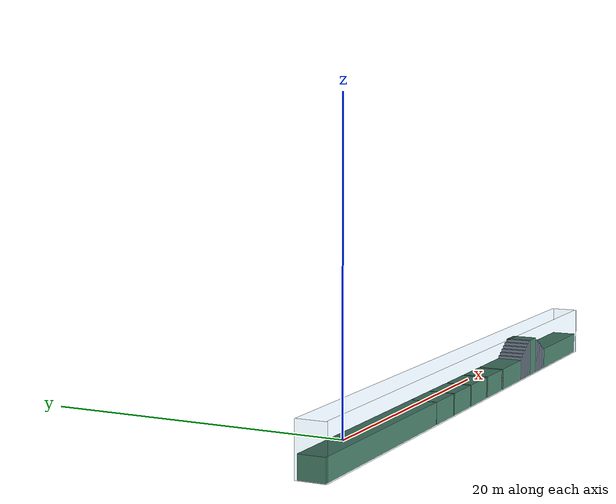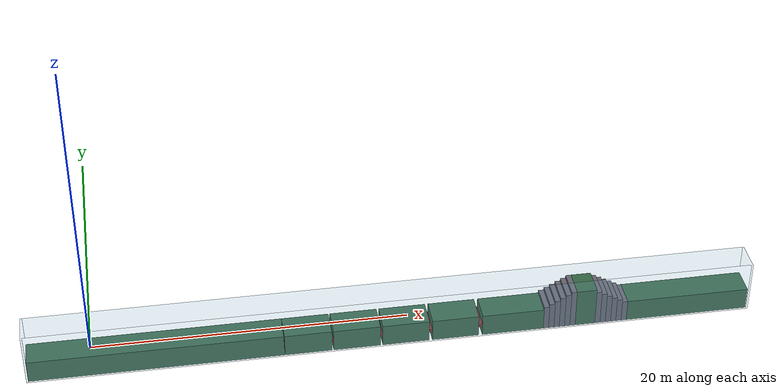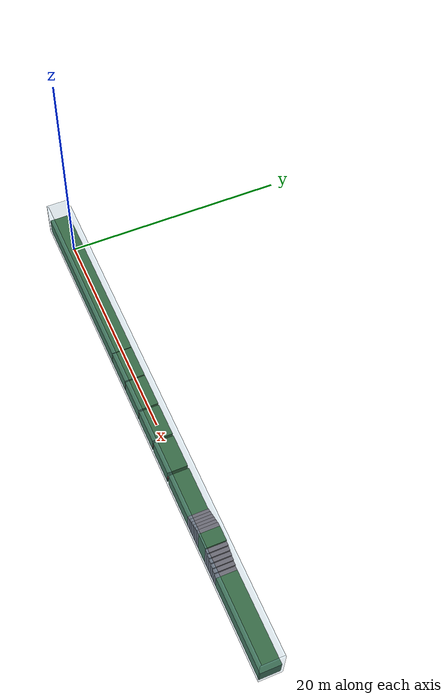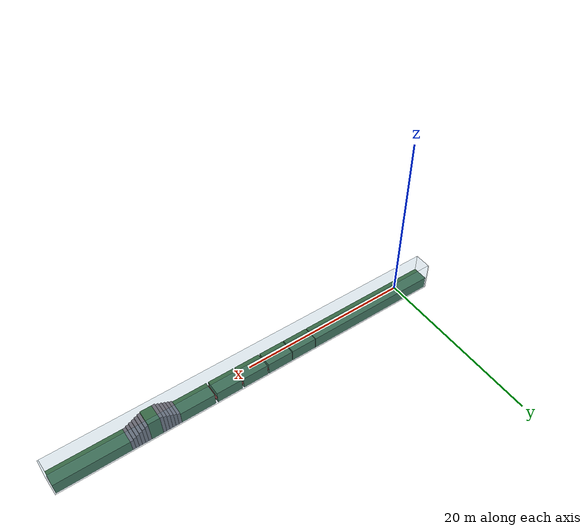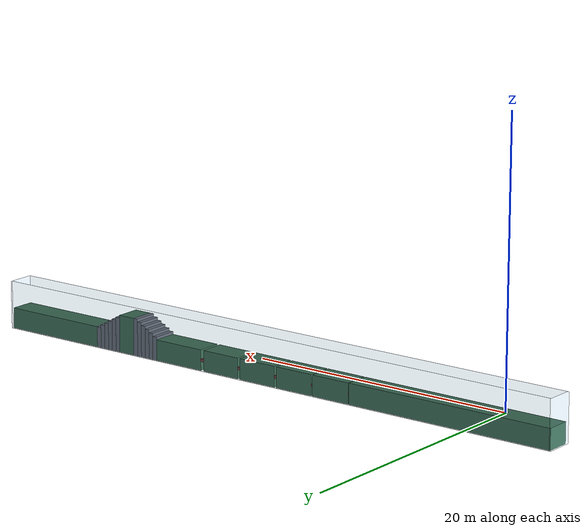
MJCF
<?xml version="1.0" encoding="utf-8"?>
<mujoco model="vrl progression terrain">
  <!-- +X course: 12m ahead of spawn, 5/10/15/20/25cm gaps separated by 3m flats,
       then a 4m approach to unchanged 10cm stairs. Gap depth is 1.5m. -->
  <statistic center="19.125 0 0.4" extent="26"/>
  <visual>
    <headlight diffuse="0.7 0.7 0.7" ambient="0.25 0.25 0.25"/>
    <global azimuth="-125" elevation="-22"/>
  </visual>
  <default>
    <default class="course">
      <geom type="box" friction="0.8 0.8 0.8" priority="2" contype="1" conaffinity="1"/>
    </default>
    <default class="guard">
      <geom type="box" friction="0.3 0.005 0.0001" contype="1" conaffinity="1" rgba="0.55 0.8 0.95 0.18"/>
    </default>
  </default>
  <worldbody>
    <light pos="15 0 8" dir="0 0 -1" directional="true"/>
    <geom name="start_flat" class="course" pos="4.000 0 -0.750" size="8.000 0.90 0.750" rgba="0.22 0.42 0.28 1"/>
    <geom name="gap_05_bottom" class="course" pos="12.025 0 -0.750" size="0.025 0.90 0.100" rgba="0.55 0.18 0.16 1"/>
    <geom name="flat_after_gap_05" class="course" pos="13.550 0 -0.750" size="1.500 0.90 0.750" rgba="0.22 0.42 0.28 1"/>
    <geom name="gap_10_bottom" class="course" pos="15.100 0 -0.750" size="0.050 0.90 0.100" rgba="0.55 0.18 0.16 1"/>
    <geom name="flat_after_gap_10" class="course" pos="16.650 0 -0.750" size="1.500 0.90 0.750" rgba="0.22 0.42 0.28 1"/>
    <geom name="gap_15_bottom" class="course" pos="18.225 0 -0.750" size="0.075 0.90 0.100" rgba="0.55 0.18 0.16 1"/>
    <geom name="flat_after_gap_15" class="course" pos="19.800 0 -0.750" size="1.500 0.90 0.750" rgba="0.22 0.42 0.28 1"/>
    <geom name="gap_20_bottom" class="course" pos="21.400 0 -0.750" size="0.100 0.90 0.100" rgba="0.55 0.18 0.16 1"/>
    <geom name="flat_after_gap_20" class="course" pos="23.000 0 -0.750" size="1.500 0.90 0.750" rgba="0.22 0.42 0.28 1"/>
    <geom name="gap_25_bottom" class="course" pos="24.625 0 -0.750" size="0.125 0.90 0.100" rgba="0.55 0.18 0.16 1"/>
    <geom name="flat_before_stairs" class="course" pos="26.750 0 -0.750" size="2.000 0.90 0.750" rgba="0.22 0.42 0.28 1"/>
    <geom name="up1" class="course" pos="28.925 0 -0.650" size="0.175 0.90 0.850" rgba="0.42 0.42 0.46 1"/>
    <geom name="up2" class="course" pos="29.275 0 -0.550" size="0.175 0.90 0.950" rgba="0.42 0.42 0.46 1"/>
    <geom name="up3" class="course" pos="29.625 0 -0.450" size="0.175 0.90 1.050" rgba="0.42 0.42 0.46 1"/>
    <geom name="up4" class="course" pos="29.975 0 -0.350" size="0.175 0.90 1.150" rgba="0.42 0.42 0.46 1"/>
    <geom name="up5" class="course" pos="30.325 0 -0.250" size="0.175 0.90 1.250" rgba="0.42 0.42 0.46 1"/>
    <geom name="up6" class="course" pos="30.675 0 -0.150" size="0.175 0.90 1.350" rgba="0.42 0.42 0.46 1"/>
    <geom name="top" class="course" pos="31.500 0 -0.150" size="0.650 0.90 1.350" rgba="0.22 0.42 0.28 1"/>
    <geom name="down1" class="course" pos="32.325 0 -0.250" size="0.175 0.90 1.250" rgba="0.42 0.42 0.46 1"/>
    <geom name="down2" class="course" pos="32.675 0 -0.350" size="0.175 0.90 1.150" rgba="0.42 0.42 0.46 1"/>
    <geom name="down3" class="course" pos="33.025 0 -0.450" size="0.175 0.90 1.050" rgba="0.42 0.42 0.46 1"/>
    <geom name="down4" class="course" pos="33.375 0 -0.550" size="0.175 0.90 0.950" rgba="0.42 0.42 0.46 1"/>
    <geom name="down5" class="course" pos="33.725 0 -0.650" size="0.175 0.90 0.850" rgba="0.42 0.42 0.46 1"/>
    <geom name="down6" class="course" pos="34.075 0 -0.750" size="0.175 0.90 0.750" rgba="0.42 0.42 0.46 1"/>
    <geom name="finish_flat" class="course" pos="38.250 0 -0.750" size="4.000 0.90 0.750" rgba="0.22 0.42 0.28 1"/>
    <!-- Inner faces at y=+/-0.90; solid walls extend from z=-1.5 to 2.0m. -->
    <geom name="guard_left" class="guard" pos="19.125 0.96 0.25" size="23.125 0.06 1.75"/>
    <geom name="guard_right" class="guard" pos="19.125 -0.96 0.25" size="23.125 0.06 1.75"/>
    <geom name="guard_start" class="guard" pos="-4.06 0 0.25" size="0.06 1.02 1.75"/>
    <geom name="guard_finish" class="guard" pos="42.31 0 0.25" size="0.06 1.02 1.75"/>
  </worldbody>
  <contact>
    <pair geom1="RR" geom2="start_flat"/>
    <pair geom1="RL" geom2="start_flat"/>
    <pair geom1="FR" geom2="start_flat"/>
    <pair geom1="FL" geom2="start_flat"/>
    <pair geom1="RR" geom2="gap_05_bottom"/>
    <pair geom1="RL" geom2="gap_05_bottom"/>
    <pair geom1="FR" geom2="gap_05_bottom"/>
    <pair geom1="FL" geom2="gap_05_bottom"/>
    <pair geom1="RR" geom2="flat_after_gap_05"/>
    <pair geom1="RL" geom2="flat_after_gap_05"/>
    <pair geom1="FR" geom2="flat_after_gap_05"/>
    <pair geom1="FL" geom2="flat_after_gap_05"/>
    <pair geom1="RR" geom2="gap_10_bottom"/>
    <pair geom1="RL" geom2="gap_10_bottom"/>
    <pair geom1="FR" geom2="gap_10_bottom"/>
    <pair geom1="FL" geom2="gap_10_bottom"/>
    <pair geom1="RR" geom2="flat_after_gap_10"/>
    <pair geom1="RL" geom2="flat_after_gap_10"/>
    <pair geom1="FR" geom2="flat_after_gap_10"/>
    <pair geom1="FL" geom2="flat_after_gap_10"/>
    <pair geom1="RR" geom2="gap_15_bottom"/>
    <pair geom1="RL" geom2="gap_15_bottom"/>
    <pair geom1="FR" geom2="gap_15_bottom"/>
    <pair geom1="FL" geom2="gap_15_bottom"/>
    <pair geom1="RR" geom2="flat_after_gap_15"/>
    <pair geom1="RL" geom2="flat_after_gap_15"/>
    <pair geom1="FR" geom2="flat_after_gap_15"/>
    <pair geom1="FL" geom2="flat_after_gap_15"/>
    <pair geom1="RR" geom2="gap_20_bottom"/>
    <pair geom1="RL" geom2="gap_20_bottom"/>
    <pair geom1="FR" geom2="gap_20_bottom"/>
    <pair geom1="FL" geom2="gap_20_bottom"/>
    <pair geom1="RR" geom2="flat_after_gap_20"/>
    <pair geom1="RL" geom2="flat_after_gap_20"/>
    <pair geom1="FR" geom2="flat_after_gap_20"/>
    <pair geom1="FL" geom2="flat_after_gap_20"/>
    <pair geom1="RR" geom2="gap_25_bottom"/>
    <pair geom1="RL" geom2="gap_25_bottom"/>
    <pair geom1="FR" geom2="gap_25_bottom"/>
    <pair geom1="FL" geom2="gap_25_bottom"/>
    <pair geom1="RR" geom2="flat_before_stairs"/>
    <pair geom1="RL" geom2="flat_before_stairs"/>
    <pair geom1="FR" geom2="flat_before_stairs"/>
    <pair geom1="FL" geom2="flat_before_stairs"/>
    <pair geom1="RR" geom2="up1"/>
    <pair geom1="RL" geom2="up1"/>
    <pair geom1="FR" geom2="up1"/>
    <pair geom1="FL" geom2="up1"/>
    <pair geom1="RR" geom2="up2"/>
    <pair geom1="RL" geom2="up2"/>
    <pair geom1="FR" geom2="up2"/>
    <pair geom1="FL" geom2="up2"/>
    <pair geom1="RR" geom2="up3"/>
    <pair geom1="RL" geom2="up3"/>
    <pair geom1="FR" geom2="up3"/>
    <pair geom1="FL" geom2="up3"/>
    <pair geom1="RR" geom2="up4"/>
    <pair geom1="RL" geom2="up4"/>
    <pair geom1="FR" geom2="up4"/>
    <pair geom1="FL" geom2="up4"/>
    <pair geom1="RR" geom2="up5"/>
    <pair geom1="RL" geom2="up5"/>
    <pair geom1="FR" geom2="up5"/>
    <pair geom1="FL" geom2="up5"/>
    <pair geom1="RR" geom2="up6"/>
    <pair geom1="RL" geom2="up6"/>
    <pair geom1="FR" geom2="up6"/>
    <pair geom1="FL" geom2="up6"/>
    <pair geom1="RR" geom2="top"/>
    <pair geom1="RL" geom2="top"/>
    <pair geom1="FR" geom2="top"/>
    <pair geom1="FL" geom2="top"/>
    <pair geom1="RR" geom2="down1"/>
    <pair geom1="RL" geom2="down1"/>
    <pair geom1="FR" geom2="down1"/>
    <pair geom1="FL" geom2="down1"/>
    <pair geom1="RR" geom2="down2"/>
    <pair geom1="RL" geom2="down2"/>
    <pair geom1="FR" geom2="down2"/>
    <pair geom1="FL" geom2="down2"/>
    <pair geom1="RR" geom2="down3"/>
    <pair geom1="RL" geom2="down3"/>
    <pair geom1="FR" geom2="down3"/>
    <pair geom1="FL" geom2="down3"/>
    <pair geom1="RR" geom2="down4"/>
    <pair geom1="RL" geom2="down4"/>
    <pair geom1="FR" geom2="down4"/>
    <pair geom1="FL" geom2="down4"/>
    <pair geom1="RR" geom2="down5"/>
    <pair geom1="RL" geom2="down5"/>
    <pair geom1="FR" geom2="down5"/>
    <pair geom1="FL" geom2="down5"/>
    <pair geom1="RR" geom2="down6"/>
    <pair geom1="RL" geom2="down6"/>
    <pair geom1="FR" geom2="down6"/>
    <pair geom1="FL" geom2="down6"/>
    <pair geom1="RR" geom2="finish_flat"/>
    <pair geom1="RL" geom2="finish_flat"/>
    <pair geom1="FR" geom2="finish_flat"/>
    <pair geom1="FL" geom2="finish_flat"/>
  </contact>
</mujoco>
